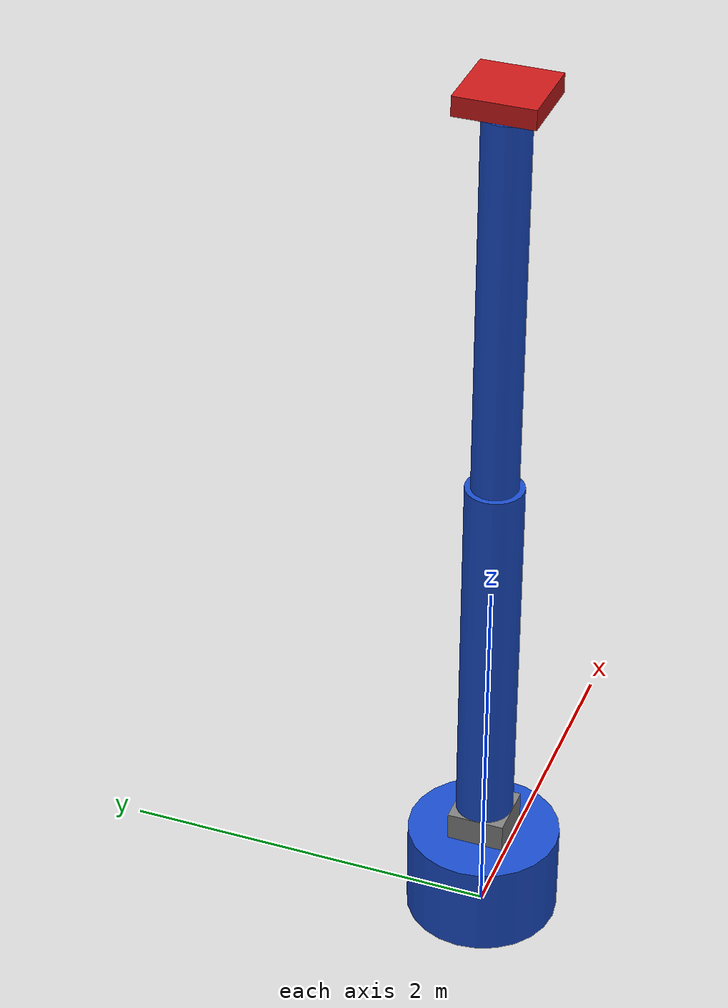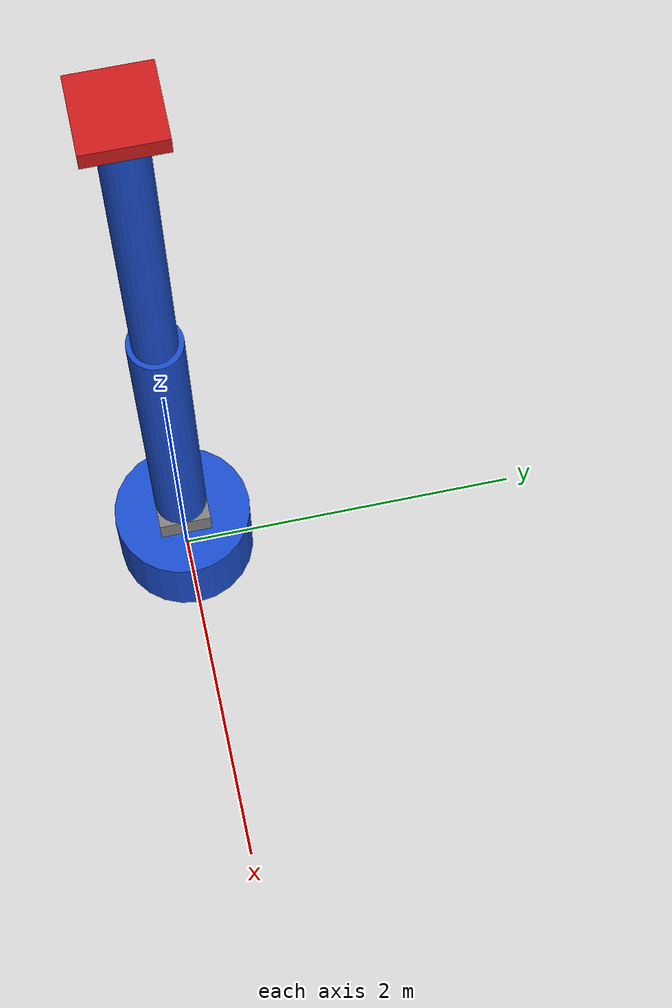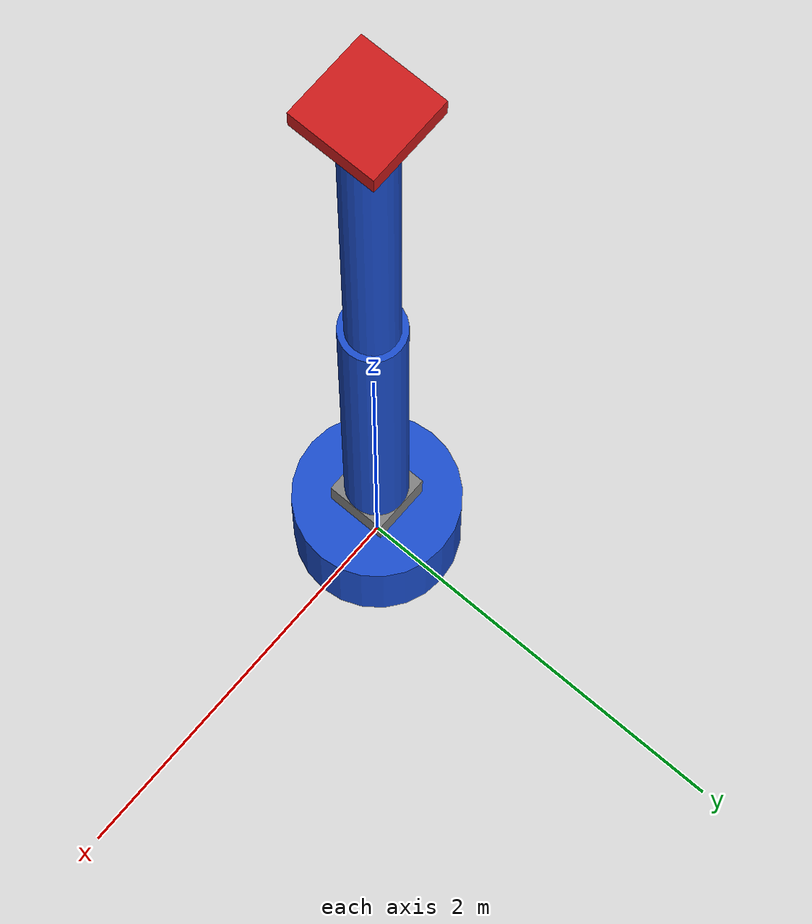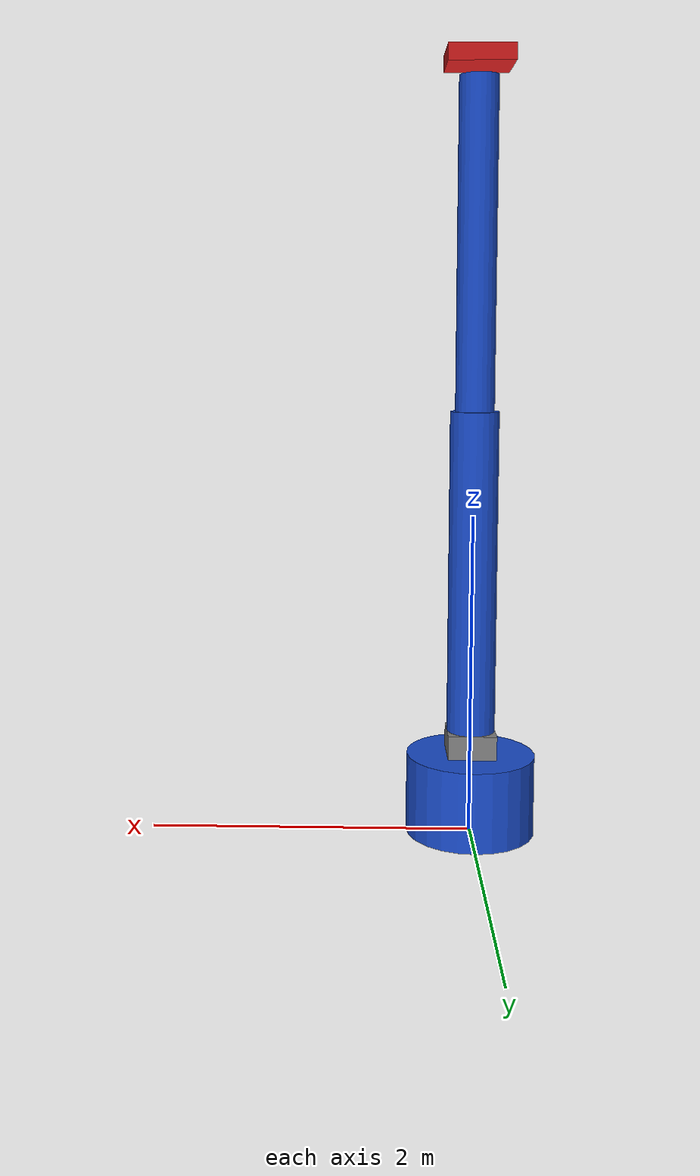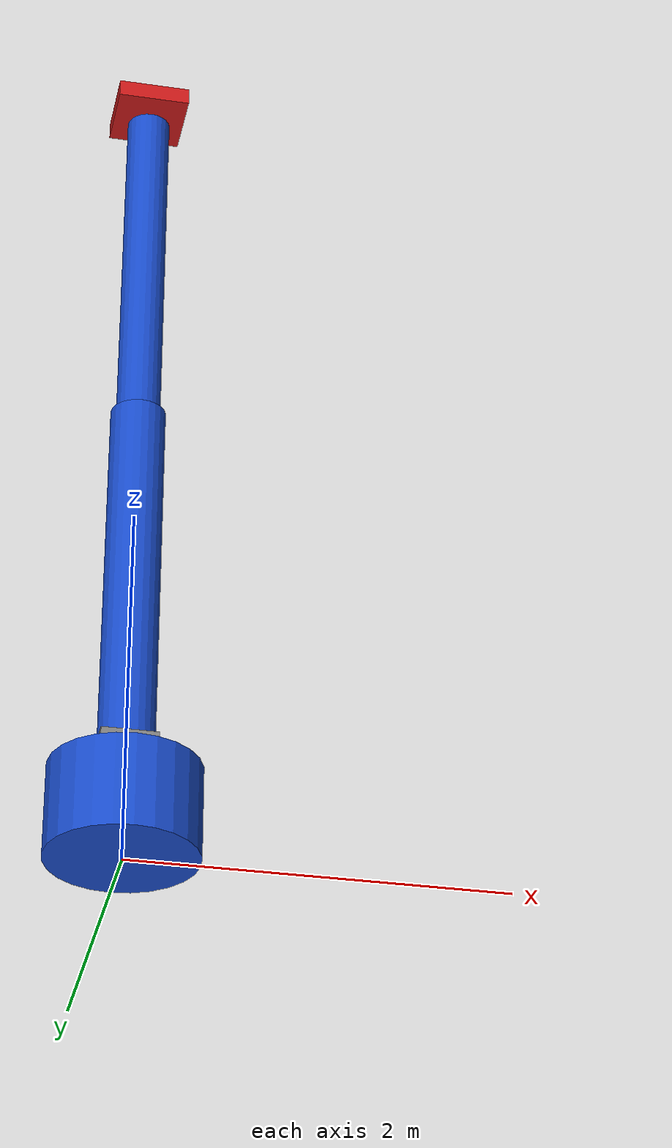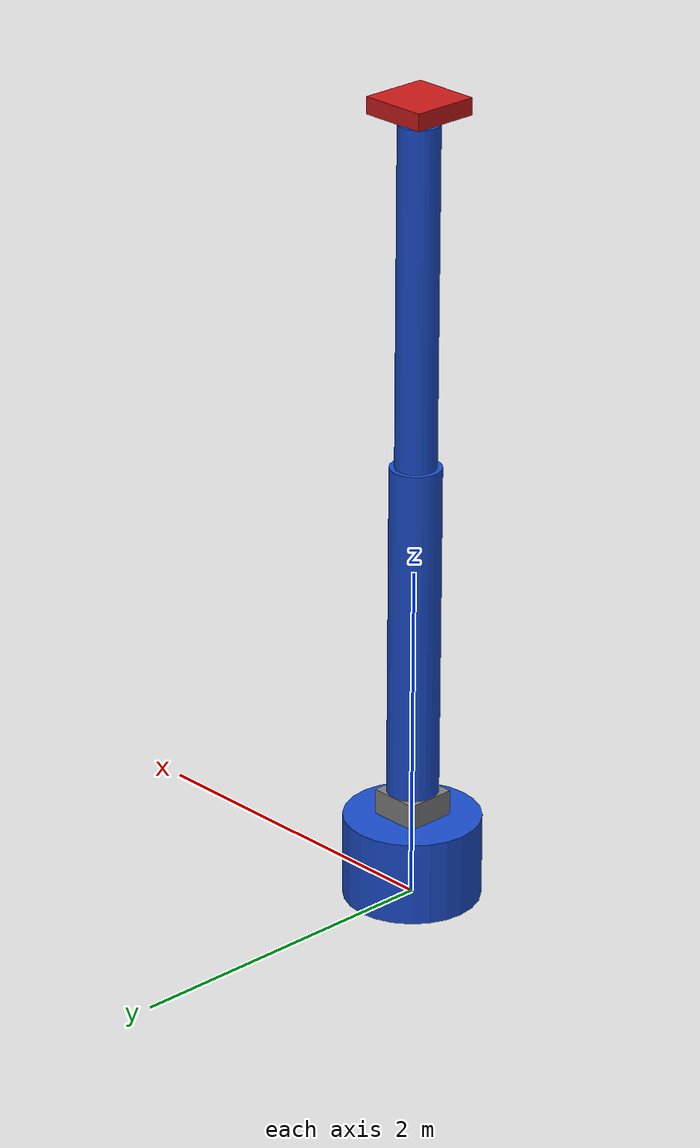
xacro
<?xml version="1.0"?>
<robot xmlns:xacro="http://www.ros.org/wiki/xacro" name="marine_arm">

    <xacro:property name="arm_mass" value="50.0" /> <xacro:property name="base_radius" value="0.4" />
    <xacro:property name="base_length" value="0.5" />
    <xacro:property name="link1_length" value="2.0" />
    <xacro:property name="link1_radius" value="0.15" />
    <xacro:property name="link2_length" value="2.0" />
    <xacro:property name="link2_radius" value="0.12" />

    <xacro:macro name="cylinder_inertia" params="m r h">
        <inertial>
            <mass value="${m}"/>
            <inertia ixx="${m*(3*r*r+h*h)/12}" ixy="0" ixz="0"
                     iyy="${m*(3*r*r+h*h)/12}" iyz="0"
                     izz="${m*r*r/2}"/>
        </inertial>
    </xacro:macro>

    <link name="world"/>
    <joint name="world_fixed" type="fixed">
        <parent link="world"/>
        <child link="base_link"/>
    </joint>

    <link name="base_link">
        <visual>
            <geometry><cylinder radius="${base_radius}" length="${base_length}"/></geometry>
            <material name="blue"><color rgba="0.1 0.3 0.8 1.0"/></material>
            <origin xyz="0 0 ${base_length/2}" rpy="0 0 0"/>
        </visual>
        <collision>
            <geometry><cylinder radius="${base_radius}" length="${base_length}"/></geometry>
            <origin xyz="0 0 ${base_length/2}" rpy="0 0 0"/>
        </collision>
        <xacro:cylinder_inertia m="100.0" r="${base_radius}" h="${base_length}"/>
    </link>

    <joint name="base_yaw_joint" type="revolute">
        <parent link="base_link"/>
        <child link="shoulder_link"/>
        <origin xyz="0 0 ${base_length}" rpy="0 0 0"/>
        <axis xyz="0 0 1"/> <limit lower="-3.14" upper="3.14" effort="5000.0" velocity="1.0"/>
    </joint>

    <link name="shoulder_link">
        <visual>
            <geometry><box size="0.3 0.3 0.3"/></geometry>
            <material name="grey"><color rgba="0.5 0.5 0.5 1.0"/></material>
        </visual>
        <collision><geometry><box size="0.3 0.3 0.3"/></geometry></collision>
        <inertial>
            <mass value="20.0"/>
            <inertia ixx="0.3" ixy="0" ixz="0" iyy="0.3" iyz="0" izz="0.3"/>
        </inertial>
    </link>

    <joint name="shoulder_pitch_joint" type="revolute">
        <parent link="shoulder_link"/>
        <child link="upper_arm_link"/>
        <origin xyz="0 0 0.15" rpy="0 0 0"/>
        <axis xyz="0 1 0"/> <limit lower="-1.57" upper="1.57" effort="8000.0" velocity="1.0"/>
    </joint>

    <link name="upper_arm_link">
        <visual>
            <origin xyz="0 0 ${link1_length/2}" rpy="0 0 0"/>
            <geometry><cylinder radius="${link1_radius}" length="${link1_length}"/></geometry>
            <material name="blue"/>
        </visual>
        <collision>
            <origin xyz="0 0 ${link1_length/2}" rpy="0 0 0"/>
            <geometry><cylinder radius="${link1_radius}" length="${link1_length}"/></geometry>
        </collision>
        <xacro:cylinder_inertia m="${arm_mass}" r="${link1_radius}" h="${link1_length}"/>
    </link>

    <joint name="elbow_pitch_joint" type="revolute">
        <parent link="upper_arm_link"/>
        <child link="forearm_link"/>
        <origin xyz="0 0 ${link1_length}" rpy="0 0 0"/>
        <axis xyz="0 1 0"/> <limit lower="-2.5" upper="2.5" effort="6000.0" velocity="1.5"/>
    </joint>

    <link name="forearm_link">
        <visual>
            <origin xyz="0 0 ${link2_length/2}" rpy="0 0 0"/>
            <geometry><cylinder radius="${link2_radius}" length="${link2_length}"/></geometry>
            <material name="blue"/>
        </visual>
        <collision>
            <origin xyz="0 0 ${link2_length/2}" rpy="0 0 0"/>
            <geometry><cylinder radius="${link2_radius}" length="${link2_length}"/></geometry>
        </collision>
        <xacro:cylinder_inertia m="30.0" r="${link2_radius}" h="${link2_length}"/>
    </link>

    <joint name="wrist_pitch_joint" type="revolute">
        <parent link="forearm_link"/>
        <child link="end_effector_link"/>
        <origin xyz="0 0 ${link2_length}" rpy="0 0 0"/>
        <axis xyz="0 1 0"/>
        <limit lower="-1.57" upper="1.57" effort="2000.0" velocity="2.0"/>
    </joint>

    <link name="end_effector_link">
        <visual>
            <origin xyz="0 0 0.1" rpy="0 0 0"/>
            <geometry><box size="0.4 0.4 0.1"/></geometry> <material name="red"><color rgba="0.8 0.1 0.1 1.0"/></material>
        </visual>
        <collision>
            <origin xyz="0 0 0.1" rpy="0 0 0"/>
            <geometry><box size="0.4 0.4 0.1"/></geometry>
        </collision>
        <inertial>
            <mass value="5.0"/>
            <inertia ixx="0.05" ixy="0" ixz="0" iyy="0.05" iyz="0" izz="0.05"/>
        </inertial>
    </link>

    <ros2_control name="GazeboSystem" type="system">
        <hardware>
            <plugin>mock_components/GenericSystem</plugin>
        </hardware>

        <xacro:macro name="configure_joint" params="joint_name">
            <joint name="${joint_name}">
                <command_interface name="position">
                    <param name="min">-3.14</param>
                    <param name="max">3.14</param>
                </command_interface>
                <state_interface name="position"/>
                <state_interface name="velocity"/>
            </joint>
        </xacro:macro>

        <xacro:configure_joint joint_name="base_yaw_joint"/>
        <xacro:configure_joint joint_name="shoulder_pitch_joint"/>
        <xacro:configure_joint joint_name="elbow_pitch_joint"/>
        <xacro:configure_joint joint_name="wrist_pitch_joint"/>
    </ros2_control>

    <gazebo>
        <plugin filename="libgazebo_ros2_control.so" name="gazebo_ros2_control">
            <parameters>$(find marine_arm_description)/config/ros2_controllers.yaml</parameters>
        </plugin>
    </gazebo>

</robot>
